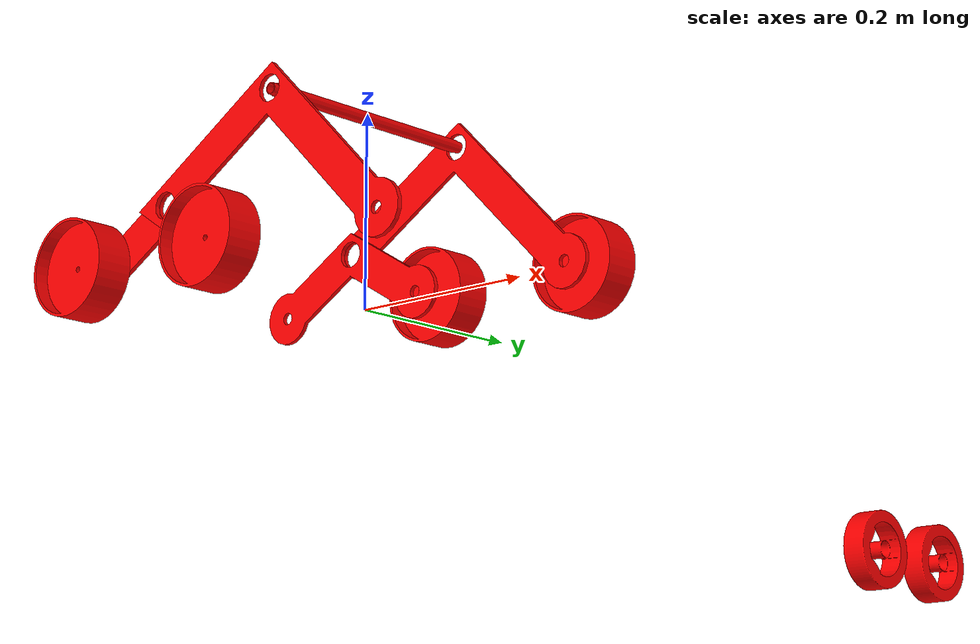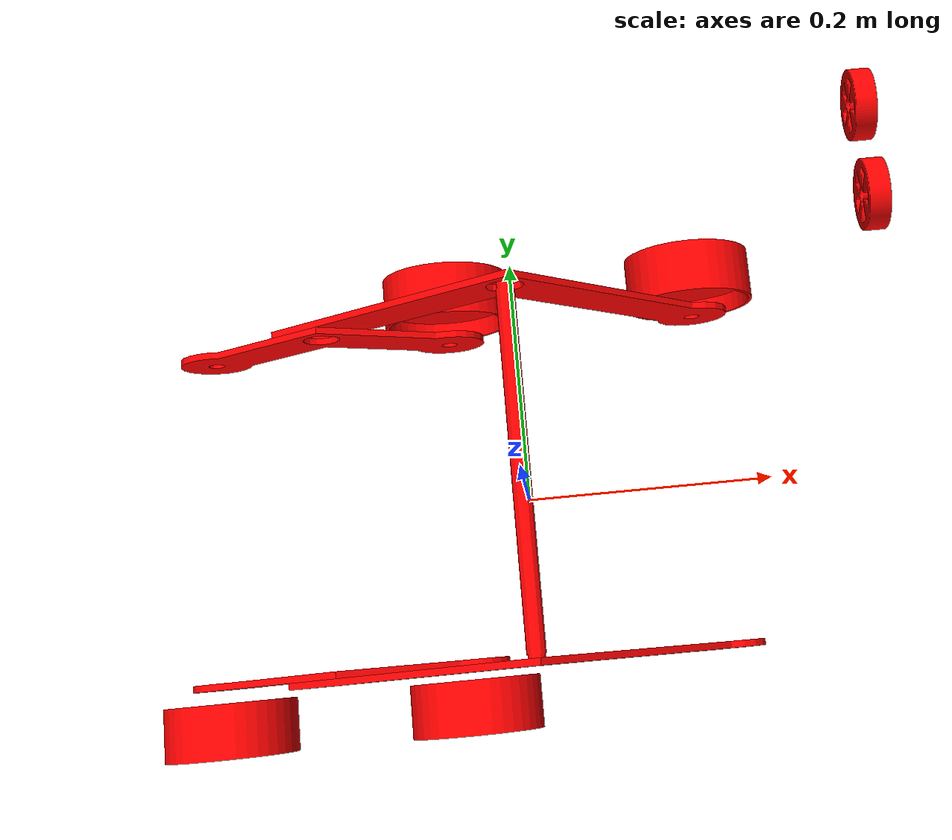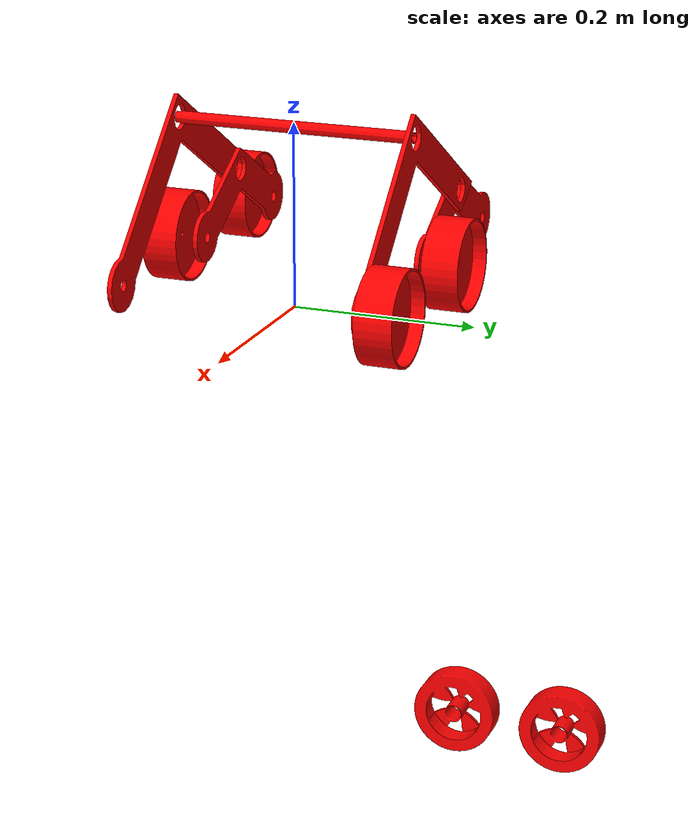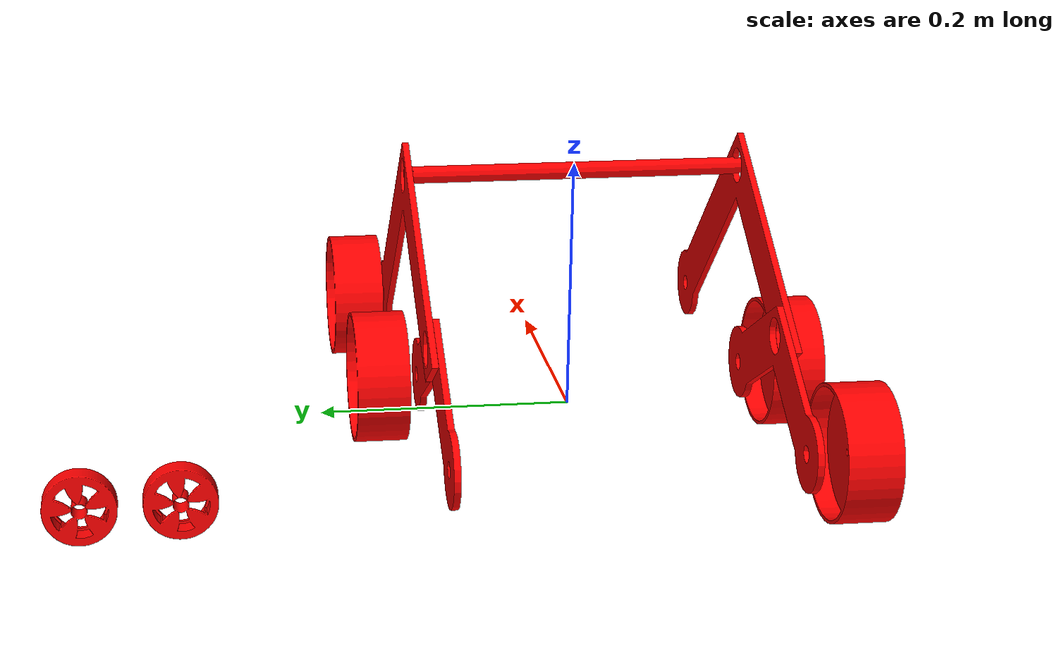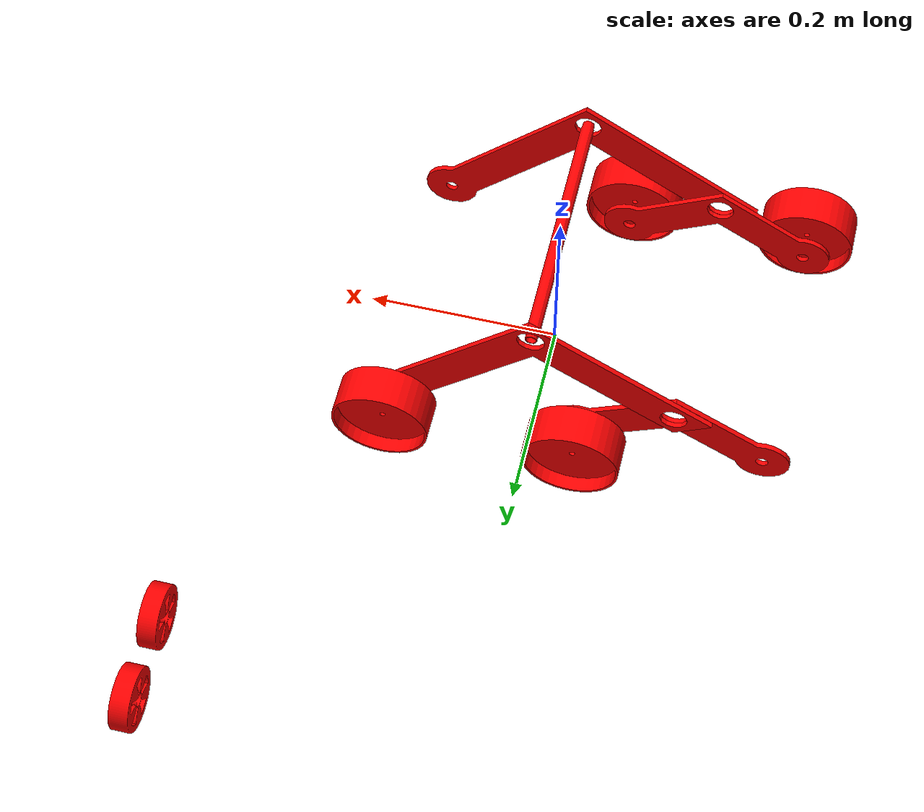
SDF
<?xml version="1.0" encoding="utf-8"?>
<sdf version="1.5">
  <model name="Swarm_basic_DRDO">
    <pose>0 0 0.194948911326115 0 0 0</pose>
    <plugin name="clock" filename="libgz_clock.so">
      <topic>/gazebo/frc/time</topic>
    </plugin>
    <link name="shaft_main">
      <gravity>1</gravity>
      <self_collide>0</self_collide>
      <pose>5.55111512312578E-17 0.0137594954851656 -2.77555756156289E-17 1.5707963267949 -3.52324806431357E-17 -1.19061722862878E-33</pose>
      <must_be_base_link>1</must_be_base_link>
      <velocity_decay>
        <linear>0</linear>
        <angular>0</angular>
      </velocity_decay>
      <inertial>
        <mass>0.150747177427617</mass>
        <pose>0 0 0 0 0 0</pose>
        <inertia>
          <ixx>0.000956070289318914</ixx>
          <ixy>2.20086496819479E-38</ixy>
          <ixz>5.11101118690564E-20</ixz>
          <iyy>0.000956070289318914</iyy>
          <iyz>8.96900646737978E-37</iyz>
          <izz>4.88106288311361E-06</izz>
        </inertia>
      </inertial>
      <collision name="shaft_main_collision">
        <pose>0.267318242739839 -0.229294869921687 0.0830225714574978 0 0 0</pose>
        <geometry>
          <mesh>
            <scale>1 1 1</scale>
            <uri>model://Swarm_basic_DRDO/meshes/shaft_main_col.STL</uri>
          </mesh>
        </geometry>
        <surface>
          <contact>
            <ode />
          </contact>
          <friction>
            <ode>
              <mu>0</mu>
              <mu2>0</mu2>
            </ode>
          </friction>
        </surface>
      </collision>
      <visual name="shaft_main_visual">
        <pose>0.267318242739839 -0.229294869921687 0.0830225714574978 0 0 0</pose>
        <material>
          <ambient>1 0 0 1</ambient>
          <diffuse>1 0 0 1</diffuse>
        </material>
        <geometry>
          <mesh>
            <scale>1 1 1</scale>
            <uri>model://Swarm_basic_DRDO/meshes/shaft_main.STL</uri>
          </mesh>
        </geometry>
      </visual>
    </link>
    <link name="rocker1">
      <gravity>1</gravity>
      <self_collide>0</self_collide>
      <pose>0.0142643962310737 0.1322 -0.0702102579274146 1.5707963267949 -3.52324806431357E-17 -1.19061722862878E-33</pose>
      <must_be_base_link>0</must_be_base_link>
      <velocity_decay>
        <linear>0</linear>
        <angular>0</angular>
      </velocity_decay>
      <inertial>
        <mass>0.096396563929331</mass>
        <pose>0 0 0 0 0 0</pose>
        <inertia>
          <ixx>0.00019324560557376</ixx>
          <ixy>0.00021045720756512</ixy>
          <ixz>1.16767853591977E-19</ixz>
          <iyy>0.000860690998185783</iyy>
          <iyz>2.43358530040585E-19</iyz>
          <izz>0.00105353495140984</izz>
        </inertia>
      </inertial>
      <collision name="rocker1_collision">
        <pose>0.253053846508766 -0.159084611994272 0.201463075972332 0 0 0</pose>
        <geometry>
          <mesh>
            <scale>1 1 1</scale>
            <uri>model://Swarm_basic_DRDO/meshes/rocker1_col.STL</uri>
          </mesh>
        </geometry>
        <surface>
          <contact>
            <ode />
          </contact>
          <friction>
            <ode>
              <mu>0</mu>
              <mu2>0</mu2>
            </ode>
          </friction>
        </surface>
      </collision>
      <visual name="rocker1_visual">
        <pose>0.253053846508766 -0.159084611994272 0.201463075972332 0 0 0</pose>
        <material>
          <ambient>1 0 0 1</ambient>
          <diffuse>1 0 0 1</diffuse>
        </material>
        <geometry>
          <mesh>
            <scale>1 1 1</scale>
            <uri>model://Swarm_basic_DRDO/meshes/rocker1.STL</uri>
          </mesh>
        </geometry>
      </visual>
    </link>
    <joint name="shaft_main-rocker1" type="revolute">
      <parent>shaft_main</parent>
      <child>rocker1</child>
      <pose>-0.0142643962310737 0.0702102579274146 5.55111512312578E-17 0 0 0</pose>
      <axis>
        <xyz>2.18547839493141E-16 0 -1</xyz>
        <dynamics>
          <damping>0</damping>
          <friction>0</friction>
        </dynamics>
        <limit>
          <upper>0</upper>
          <lower>0</lower>
          <effort>1</effort>
        </limit>
      </axis>
    </joint>
    <link name="rocker2">
      <gravity>1</gravity>
      <self_collide>0</self_collide>
      <pose>0.0142643962310742 -0.1322 -0.0702102579274139 1.5707963267949 -3.52324806431357E-17 -1.19061722862878E-33</pose>
      <must_be_base_link>0</must_be_base_link>
      <velocity_decay>
        <linear>0</linear>
        <angular>0</angular>
      </velocity_decay>
      <inertial>
        <mass>0.0963965639293307</mass>
        <pose>0 0 0 0 0 0</pose>
        <inertia>
          <ixx>0.000193245605573763</ixx>
          <ixy>0.000210457207565121</ixy>
          <ixz>2.35666408804773E-19</ixz>
          <iyy>0.000860690998185782</iyy>
          <iyz>7.30579791836892E-19</iyz>
          <izz>0.00105353495140983</izz>
        </inertia>
      </inertial>
      <collision name="rocker2_collision">
        <pose>0.253053846508765 -0.159084611994273 -0.0629369240276679 0 0 0</pose>
        <geometry>
          <mesh>
            <scale>1 1 1</scale>
            <uri>model://Swarm_basic_DRDO/meshes/rocker2_col.STL</uri>
          </mesh>
        </geometry>
        <surface>
          <contact>
            <ode />
          </contact>
          <friction>
            <ode>
              <mu>0</mu>
              <mu2>0</mu2>
            </ode>
          </friction>
        </surface>
      </collision>
      <visual name="rocker2_visual">
        <pose>0.253053846508765 -0.159084611994273 -0.0629369240276679 0 0 0</pose>
        <material>
          <ambient>1 0 0 1</ambient>
          <diffuse>1 0 0 1</diffuse>
        </material>
        <geometry>
          <mesh>
            <scale>1 1 1</scale>
            <uri>model://Swarm_basic_DRDO/meshes/rocker2.STL</uri>
          </mesh>
        </geometry>
      </visual>
    </link>
    <joint name="shaft_main-rocker2" type="revolute">
      <parent>shaft_main</parent>
      <child>rocker2</child>
      <pose>-0.160425718828828 -0.0196862904983429 1.38777878078145E-17 0 0 0</pose>
      <axis>
        <xyz>0 0 -1</xyz>
        <dynamics>
          <damping>0</damping>
          <friction>0</friction>
        </dynamics>
        <limit>
          <upper>0</upper>
          <lower>0</lower>
          <effort>1</effort>
        </limit>
      </axis>
    </joint>
    <link name="bogie1">
      <gravity>1</gravity>
      <self_collide>0</self_collide>
      <pose>-0.146161322597755 0.1272 -0.126642449311268 1.5707963267949 -3.52324806431357E-17 -1.19061722862878E-33</pose>
      <must_be_base_link>0</must_be_base_link>
      <velocity_decay>
        <linear>0</linear>
        <angular>0</angular>
      </velocity_decay>
      <inertial>
        <mass>0.0641941015283157</mass>
        <pose>0 0 0 0 0 0</pose>
        <inertia>
          <ixx>3.25139585024769E-05</ixx>
          <ixy>2.31716513589188E-18</ixy>
          <ixz>5.35214914534586E-20</ixz>
          <iyy>0.000319540421204775</iyy>
          <iyz>4.72634688114488E-21</iyz>
          <izz>0.000351786904284217</izz>
        </inertia>
      </inertial>
      <collision name="bogie1_collision">
        <pose>0.413479565337594 -0.102652420610419 0.196463075972332 0 0 0</pose>
        <geometry>
          <mesh>
            <scale>1 1 1</scale>
            <uri>model://Swarm_basic_DRDO/meshes/bogie1_col.STL</uri>
          </mesh>
        </geometry>
        <surface>
          <contact>
            <ode />
          </contact>
          <friction>
            <ode>
              <mu>0</mu>
              <mu2>0</mu2>
            </ode>
          </friction>
        </surface>
      </collision>
      <visual name="bogie1_visual">
        <pose>0.413479565337594 -0.102652420610419 0.196463075972332 0 0 0</pose>
        <material>
          <ambient>1 0 0 1</ambient>
          <diffuse>1 0 0 1</diffuse>
        </material>
        <geometry>
          <mesh>
            <scale>1 1 1</scale>
            <uri>model://Swarm_basic_DRDO/meshes/bogie1.STL</uri>
          </mesh>
        </geometry>
      </visual>
    </link>
    <joint name="rocker1-bogie1" type="revolute">
      <parent>rocker1</parent>
      <child>bogie1</child>
      <pose>1.0547118733939E-15 0.0367459008855112 0 0 0 0</pose>
      <axis>
        <xyz>0 0 -1</xyz>
        <dynamics>
          <damping>0</damping>
          <friction>0</friction>
        </dynamics>
        <limit>
          <upper>0</upper>
          <lower>0</lower>
          <effort>1</effort>
        </limit>
      </axis>
    </joint>
    <link name="wheel2">
      <gravity>1</gravity>
      <self_collide>0</self_collide>
      <pose>0.144337148638157 0.159700000001151 -0.144948911326114 1.5707963267949 -3.52324806431357E-17 -1.19061722862878E-33</pose>
      <must_be_base_link>0</must_be_base_link>
      <velocity_decay>
        <linear>0</linear>
        <angular>0</angular>
      </velocity_decay>
      <inertial>
        <mass>0.101686078123104</mass>
        <pose>0 0 0 0 0 0</pose>
        <inertia>
          <ixx>8.16691726509939E-05</ixx>
          <ixy>7.02258353187431E-21</ixy>
          <ixz>1.25040144430925E-20</ixz>
          <iyy>8.1669172650994E-05</iyy>
          <iyz>2.85866137927098E-21</iyz>
          <izz>0.000153833908959209</izz>
        </inertia>
      </inertial>
      <collision name="wheel2_collision">
        <pose>0.122981094101683 -0.0843459585955724 0.228963075973483 0 0 0</pose>
        <geometry>
          <mesh>
            <scale>1 1 1</scale>
            <uri>model://Swarm_basic_DRDO/meshes/wheel2_col.STL</uri>
          </mesh>
        </geometry>
        <surface>
          <contact>
            <ode />
          </contact>
          <friction>
            <ode>
              <mu>0</mu>
              <mu2>0</mu2>
            </ode>
          </friction>
        </surface>
      </collision>
      <visual name="wheel2_visual">
        <pose>0.122981094101683 -0.0843459585955724 0.228963075973483 0 0 0</pose>
        <material>
          <ambient>1 0 0 1</ambient>
          <diffuse>1 0 0 1</diffuse>
        </material>
        <geometry>
          <mesh>
            <scale>1 1 1</scale>
            <uri>model://Swarm_basic_DRDO/meshes/wheel2.STL</uri>
          </mesh>
        </geometry>
      </visual>
    </link>
    <joint name="rocker1-wheel2" type="revolute">
      <parent>rocker1</parent>
      <child>wheel2</child>
      <pose>-0.196945936739175 0 2.77555756156289E-17 0 0 0</pose>
      <axis>
        <xyz>0 0 1</xyz>
        <dynamics>
          <damping>0</damping>
          <friction>0</friction>
        </dynamics>
        <limit>
          <upper>0</upper>
          <lower>0</lower>
          <effort>1</effort>
        </limit>
      </axis>
    </joint>
    <link name="bogie2">
      <gravity>1</gravity>
      <self_collide>0</self_collide>
      <pose>-0.146161322597754 -0.1272 -0.126642449311264 1.5707963267949 -3.52324806431357E-17 -1.19061722862878E-33</pose>
      <must_be_base_link>0</must_be_base_link>
      <velocity_decay>
        <linear>0</linear>
        <angular>0</angular>
      </velocity_decay>
      <inertial>
        <mass>0.0641941015283156</mass>
        <pose>0 0 0 0 0 0</pose>
        <inertia>
          <ixx>3.25139585024779E-05</ixx>
          <ixy>2.48559433662698E-19</ixy>
          <ixz>6.26010050662804E-20</ixz>
          <iyy>0.000319540421204776</iyy>
          <iyz>1.00297366194418E-19</iyz>
          <izz>0.000351786904284217</izz>
        </inertia>
      </inertial>
      <collision name="bogie2_collision">
        <pose>0.413479565337593 -0.102652420610423 -0.057936924027668 0 0 0</pose>
        <geometry>
          <mesh>
            <scale>1 1 1</scale>
            <uri>model://Swarm_basic_DRDO/meshes/bogie2_col.STL</uri>
          </mesh>
        </geometry>
        <surface>
          <contact>
            <ode />
          </contact>
          <friction>
            <ode>
              <mu>0</mu>
              <mu2>0</mu2>
            </ode>
          </friction>
        </surface>
      </collision>
      <visual name="bogie2_visual">
        <pose>0.413479565337593 -0.102652420610423 -0.057936924027668 0 0 0</pose>
        <material>
          <ambient>1 0 0 1</ambient>
          <diffuse>1 0 0 1</diffuse>
        </material>
        <geometry>
          <mesh>
            <scale>1 1 1</scale>
            <uri>model://Swarm_basic_DRDO/meshes/bogie2.STL</uri>
          </mesh>
        </geometry>
      </visual>
    </link>
    <joint name="rocker2-bogie2" type="revolute">
      <parent>rocker2</parent>
      <child>bogie2</child>
      <pose>1.11022302462516E-16 0.0367459008855071 0 0 0 0</pose>
      <axis>
        <xyz>0 0 -1</xyz>
        <dynamics>
          <damping>0</damping>
          <friction>0</friction>
        </dynamics>
        <limit>
          <upper>0</upper>
          <lower>0</lower>
          <effort>1</effort>
        </limit>
      </axis>
    </joint>
    <link name="wheel3">
      <gravity>1</gravity>
      <self_collide>0</self_collide>
      <pose>0.144337148638157 -0.159699999998849 -0.144948911326115 1.5707963267949 -3.52324806431357E-17 -1.19061722862878E-33</pose>
      <must_be_base_link>0</must_be_base_link>
      <velocity_decay>
        <linear>0</linear>
        <angular>0</angular>
      </velocity_decay>
      <inertial>
        <mass>0.101686078123104</mass>
        <pose>0 0 0 0 0 0</pose>
        <inertia>
          <ixx>8.16691726509941E-05</ixx>
          <ixy>5.49313896543177E-21</ixy>
          <ixz>1.08138722040024E-20</ixz>
          <iyy>8.16691726509941E-05</iyy>
          <iyz>6.69959751288794E-21</iyz>
          <izz>0.000153833908959209</izz>
        </inertia>
      </inertial>
      <collision name="wheel3_collision">
        <pose>0.122981094101682 -0.0843459585955721 -0.090436924026517 0 0 0</pose>
        <geometry>
          <mesh>
            <scale>1 1 1</scale>
            <uri>model://Swarm_basic_DRDO/meshes/wheel3_col.STL</uri>
          </mesh>
        </geometry>
        <surface>
          <contact>
            <ode />
          </contact>
          <friction>
            <ode>
              <mu>0</mu>
              <mu2>0</mu2>
            </ode>
          </friction>
        </surface>
      </collision>
      <visual name="wheel3_visual">
        <pose>0.122981094101682 -0.0843459585955721 -0.090436924026517 0 0 0</pose>
        <material>
          <ambient>1 0 0 1</ambient>
          <diffuse>1 0 0 1</diffuse>
        </material>
        <geometry>
          <mesh>
            <scale>1 1 1</scale>
            <uri>model://Swarm_basic_DRDO/meshes/wheel3.STL</uri>
          </mesh>
        </geometry>
      </visual>
    </link>
    <joint name="rocker2-wheel3" type="revolute">
      <parent>rocker2</parent>
      <child>wheel3</child>
      <pose>-4.16333634234434E-17 0 0 0 0 0</pose>
      <axis>
        <xyz>3.46944695195362E-16 0 1</xyz>
        <dynamics>
          <damping>0</damping>
          <friction>0</friction>
        </dynamics>
        <limit>
          <upper>0</upper>
          <lower>0</lower>
          <effort>1</effort>
        </limit>
      </axis>
    </joint>
    <link name="wheel1">
      <gravity>1</gravity>
      <self_collide>0</self_collide>
      <pose>-0.0526087881010184 0.159700000001151 -0.144948911326114 1.5707963267949 -3.52324806431357E-17 -1.19061722862878E-33</pose>
      <must_be_base_link>0</must_be_base_link>
      <velocity_decay>
        <linear>0</linear>
        <angular>0</angular>
      </velocity_decay>
      <inertial>
        <mass>0.101686078123104</mass>
        <pose>0 0 0 0 0 0</pose>
        <inertia>
          <ixx>8.16691726509941E-05</ixx>
          <ixy>5.74398714074344E-21</ixy>
          <ixz>2.01856822019475E-20</ixz>
          <iyy>8.16691726509941E-05</iyy>
          <iyz>6.15858684804801E-21</iyz>
          <izz>0.000153833908959209</izz>
        </inertia>
      </inertial>
      <collision name="wheel1_collision">
        <pose>0.319927030840858 -0.0843459585955724 0.228963075973483 0 0 0</pose>
        <geometry>
          <mesh>
            <scale>1 1 1</scale>
            <uri>model://Swarm_basic_DRDO/meshes/wheel1_col.STL</uri>
          </mesh>
        </geometry>
        <surface>
          <contact>
            <ode />
          </contact>
          <friction>
            <ode>
              <mu>0</mu>
              <mu2>0</mu2>
            </ode>
          </friction>
        </surface>
      </collision>
      <visual name="wheel1_visual">
        <pose>0.319927030840858 -0.0843459585955724 0.228963075973483 0 0 0</pose>
        <material>
          <ambient>1 0 0 1</ambient>
          <diffuse>1 0 0 1</diffuse>
        </material>
        <geometry>
          <mesh>
            <scale>1 1 1</scale>
            <uri>model://Swarm_basic_DRDO/meshes/wheel1.STL</uri>
          </mesh>
        </geometry>
      </visual>
    </link>
    <joint name="bogie1-wheel1" type="revolute">
      <parent>bogie1</parent>
      <child>wheel1</child>
      <pose>0 0 0 0 0 0</pose>
      <axis>
        <xyz>0 0 1</xyz>
        <dynamics>
          <damping>0</damping>
          <friction>0</friction>
        </dynamics>
        <limit>
          <upper>0</upper>
          <lower>0</lower>
          <effort>1</effort>
        </limit>
      </axis>
    </joint>
    <link name="wheel6">
      <gravity>1</gravity>
      <self_collide>0</self_collide>
      <pose>-0.23971385709449 0.159700000001151 -0.144948911326114 1.5707963267949 -3.52324806431357E-17 -1.19061722862878E-33</pose>
      <must_be_base_link>0</must_be_base_link>
      <velocity_decay>
        <linear>0</linear>
        <angular>0</angular>
      </velocity_decay>
      <inertial>
        <mass>0.101686078123104</mass>
        <pose>0 0 0 0 0 0</pose>
        <inertia>
          <ixx>8.1669172650994E-05</ixx>
          <ixy>2.31211680358844E-20</ixy>
          <ixz>1.85358852160503E-20</ixz>
          <iyy>8.1669172650994E-05</iyy>
          <iyz>1.86704935489177E-21</iyz>
          <izz>0.000153833908959209</izz>
        </inertia>
      </inertial>
      <collision name="wheel6_collision">
        <pose>0.507032099834329 -0.0843459585955726 0.228963075973483 0 0 0</pose>
        <geometry>
          <mesh>
            <scale>1 1 1</scale>
            <uri>model://Swarm_basic_DRDO/meshes/wheel6_col.STL</uri>
          </mesh>
        </geometry>
        <surface>
          <contact>
            <ode />
          </contact>
          <friction>
            <ode>
              <mu>0</mu>
              <mu2>0</mu2>
            </ode>
          </friction>
        </surface>
      </collision>
      <visual name="wheel6_visual">
        <pose>0.507032099834329 -0.0843459585955726 0.228963075973483 0 0 0</pose>
        <material>
          <ambient>1 0 0 1</ambient>
          <diffuse>1 0 0 1</diffuse>
        </material>
        <geometry>
          <mesh>
            <scale>1 1 1</scale>
            <uri>model://Swarm_basic_DRDO/meshes/wheel6.STL</uri>
          </mesh>
        </geometry>
      </visual>
    </link>
    <joint name="bogie1-wheel6" type="revolute">
      <parent>bogie1</parent>
      <child>wheel6</child>
      <pose>0 0 0 0 0 0</pose>
      <axis>
        <xyz>0 0 1</xyz>
        <dynamics>
          <damping>0</damping>
          <friction>0</friction>
        </dynamics>
        <limit>
          <upper>0</upper>
          <lower>0</lower>
          <effort>1</effort>
        </limit>
      </axis>
    </joint>
    <link name="wheel4">
      <gravity>1</gravity>
      <self_collide>0</self_collide>
      <pose>-0.0526087881010182 -0.159699999998849 -0.144948911326115 1.5707963267949 -3.52324806431357E-17 -1.19061722862878E-33</pose>
      <must_be_base_link>0</must_be_base_link>
      <velocity_decay>
        <linear>0</linear>
        <angular>0</angular>
      </velocity_decay>
      <inertial>
        <mass>0.101686078123104</mass>
        <pose>0 0 0 0 0 0</pose>
        <inertia>
          <ixx>8.16691726509941E-05</ixx>
          <ixy>1.95170381708853E-20</ixy>
          <ixz>2.00404168177911E-20</ixz>
          <iyy>8.1669172650994E-05</iyy>
          <iyz>1.40267813958499E-21</iyz>
          <izz>0.000153833908959209</izz>
        </inertia>
      </inertial>
      <collision name="wheel4_collision">
        <pose>0.319927030840857 -0.0843459585955721 -0.090436924026517 0 0 0</pose>
        <geometry>
          <mesh>
            <scale>1 1 1</scale>
            <uri>model://Swarm_basic_DRDO/meshes/wheel4_col.STL</uri>
          </mesh>
        </geometry>
        <surface>
          <contact>
            <ode />
          </contact>
          <friction>
            <ode>
              <mu>0</mu>
              <mu2>0</mu2>
            </ode>
          </friction>
        </surface>
      </collision>
      <visual name="wheel4_visual">
        <pose>0.319927030840857 -0.0843459585955721 -0.090436924026517 0 0 0</pose>
        <material>
          <ambient>1 0 0 1</ambient>
          <diffuse>1 0 0 1</diffuse>
        </material>
        <geometry>
          <mesh>
            <scale>1 1 1</scale>
            <uri>model://Swarm_basic_DRDO/meshes/wheel4.STL</uri>
          </mesh>
        </geometry>
      </visual>
    </link>
    <joint name="bogie2-wheel4" type="revolute">
      <parent>bogie2</parent>
      <child>wheel4</child>
      <pose>0 0 0 0 0 0</pose>
      <axis>
        <xyz>0 0 1</xyz>
        <dynamics>
          <damping>0</damping>
          <friction>0</friction>
        </dynamics>
        <limit>
          <upper>0</upper>
          <lower>0</lower>
          <effort>1</effort>
        </limit>
      </axis>
    </joint>
    <link name="wheel5">
      <gravity>1</gravity>
      <self_collide>0</self_collide>
      <pose>-0.23971385709449 -0.159699999998849 -0.144948911326115 1.5707963267949 -3.52324806431357E-17 -1.19061722862878E-33</pose>
      <must_be_base_link>0</must_be_base_link>
      <velocity_decay>
        <linear>0</linear>
        <angular>0</angular>
      </velocity_decay>
      <inertial>
        <mass>0.101686078123104</mass>
        <pose>0 0 0 0 0 0</pose>
        <inertia>
          <ixx>8.16691726509941E-05</ixx>
          <ixy>1.64986619048666E-21</ixy>
          <ixz>1.27305083617486E-20</ixz>
          <iyy>8.16691726509941E-05</iyy>
          <iyz>4.7867764000503E-20</iyz>
          <izz>0.000153833908959209</izz>
        </inertia>
      </inertial>
      <collision name="wheel5_collision">
        <pose>0.507032099834329 -0.0843459585955721 -0.090436924026517 0 0 0</pose>
        <geometry>
          <mesh>
            <scale>1 1 1</scale>
            <uri>model://Swarm_basic_DRDO/meshes/wheel5_col.STL</uri>
          </mesh>
        </geometry>
        <surface>
          <contact>
            <ode />
          </contact>
          <friction>
            <ode>
              <mu>0</mu>
              <mu2>0</mu2>
            </ode>
          </friction>
        </surface>
      </collision>
      <visual name="wheel5_visual">
        <pose>0.507032099834329 -0.0843459585955721 -0.090436924026517 0 0 0</pose>
        <material>
          <ambient>1 0 0 1</ambient>
          <diffuse>1 0 0 1</diffuse>
        </material>
        <geometry>
          <mesh>
            <scale>1 1 1</scale>
            <uri>model://Swarm_basic_DRDO/meshes/wheel5.STL</uri>
          </mesh>
        </geometry>
      </visual>
    </link>
    <joint name="bogie2-wheel5" type="revolute">
      <parent>bogie2</parent>
      <child>wheel5</child>
      <pose>0 -1.38777878078145E-17 0 0 0 0</pose>
      <axis>
        <xyz>0 -6.93889390390723E-16 1</xyz>
        <dynamics>
          <damping>0</damping>
          <friction>0</friction>
        </dynamics>
        <limit>
          <upper>0</upper>
          <lower>0</lower>
          <effort>1</effort>
        </limit>
      </axis>
    </joint>
    <plugin name="rocker1-wheel2_motor" filename="libgz_dc_motor.so">
      <joint>rocker1-wheel2</joint>
      <topic>/gazebo/frc/simulator/pwm/2</topic>
      <multiplier>5</multiplier>
    </plugin>
    <plugin name="rocker2-wheel3_motor" filename="libgz_dc_motor.so">
      <joint>rocker2-wheel3</joint>
      <topic>/gazebo/frc/simulator/pwm/3</topic>
      <multiplier>5</multiplier>
    </plugin>
    <plugin name="bogie1-wheel1_motor" filename="libgz_dc_motor.so">
      <joint>bogie1-wheel1</joint>
      <topic>/gazebo/frc/simulator/pwm/1</topic>
      <multiplier>5</multiplier>
    </plugin>
    <plugin name="bogie1-wheel6_motor" filename="libgz_dc_motor.so">
      <joint>bogie1-wheel6</joint>
      <topic>/gazebo/frc/simulator/pwm/6</topic>
      <multiplier>5</multiplier>
    </plugin>
    <plugin name="bogie2-wheel4_motor" filename="libgz_dc_motor.so">
      <joint>bogie2-wheel4</joint>
      <topic>/gazebo/frc/simulator/pwm/4</topic>
      <multiplier>5</multiplier>
    </plugin>
    <plugin name="bogie2-wheel5_motor" filename="libgz_dc_motor.so">
      <joint>bogie2-wheel5</joint>
      <topic>/gazebo/frc/simulator/pwm/5</topic>
      <multiplier>5</multiplier>
    </plugin>
  </model>
</sdf>
